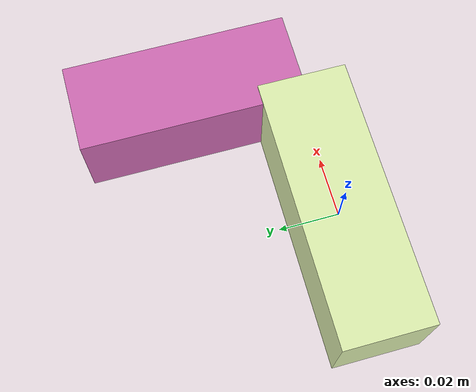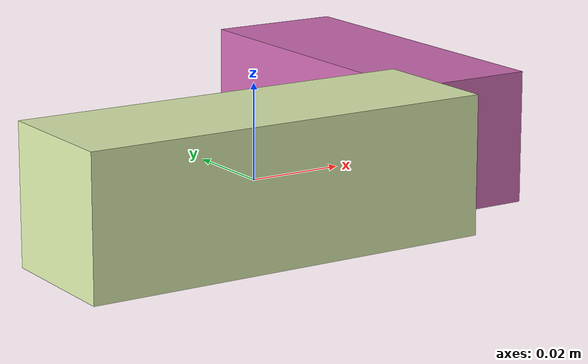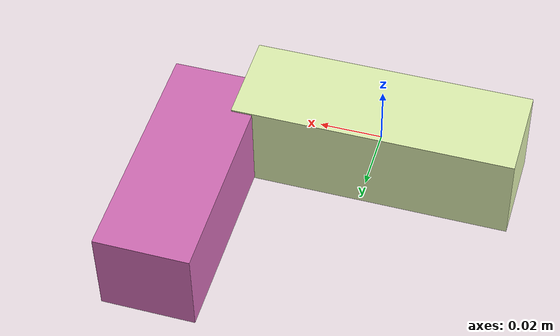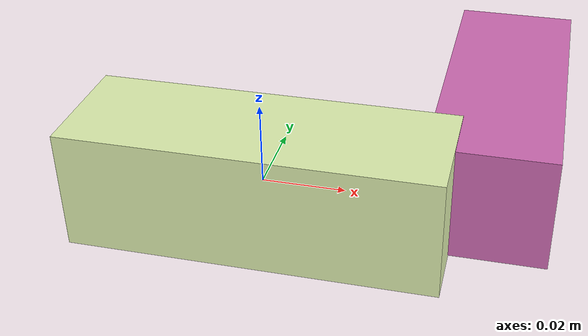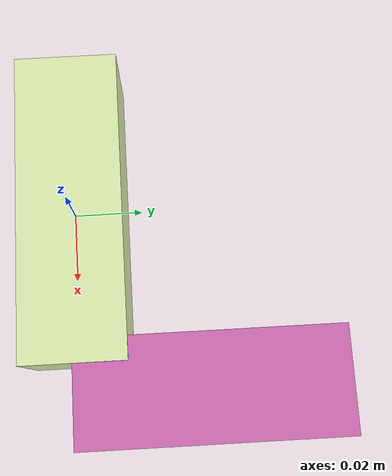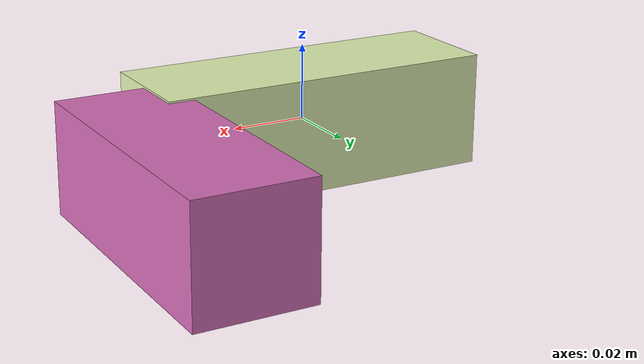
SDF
<sdf version="1.4"><world name="default"><model name="object0"><link name="link1"><pose>0 0 0 0 0 0</pose><inertial><pose>0 0 0 0 0 0</pose><mass>0.048521062944645255</mass><inertia><ixx>7.278159441696788e-06</ixx><ixy>0</ixy><iyy>3.628449167063725e-05</iyy><ixz>0</ixz><iyz>0</iyz><izz>3.628449167063725e-05</izz></inertia></inertial><visual name="link1_visual"><pose>0 0  0 0 0 0</pose><geometry><box><size>0.0898538202678616 0.03 0.03</size></box></geometry><material><diffuse>0.8874056441255593 0.958480164165399 0.7018633206341263 1</diffuse></material></visual><collision><pose>0 0  0 0 0 0</pose><geometry><box><size>0.0898538202678616 0.03 0.03</size></box></geometry></collision></link><link name="link2"><pose>0.05314957419213584 0.037636679171055364 0 0 0 0</pose><inertial><pose>0 0 0 0 0 0</pose><mass>0.040896353308562054</mass><inertia><ixx>2.2413372115736262e-05</ixx><ixy>0</ixy><iyy>5.933379259183877e-06</iyy><ixz>0</ixz><iyz>0</iyz><izz>2.2614445852836693e-05</izz></inertia></inertial><visual name="link2_visual"><pose>0 0  0 0 0 0</pose><geometry><box><size>0.03 0.07573398760844824 0.028999999999999998</size></box></geometry><material><diffuse>0.8310169661390248 0.4295787023243623 0.7178882896047716 1</diffuse></material></visual><collision><pose>0 0  0 0 0 0</pose><geometry><box><size>0.03 0.07573398760844824 0.028999999999999998</size></box></geometry></collision></link><joint name="link_joint_0" type="fixed"><parent>link1</parent><child>link2</child><pose>0 0 0 0 0 0</pose><axis><xyz>0 0 1</xyz></axis></joint></model></world></sdf>
